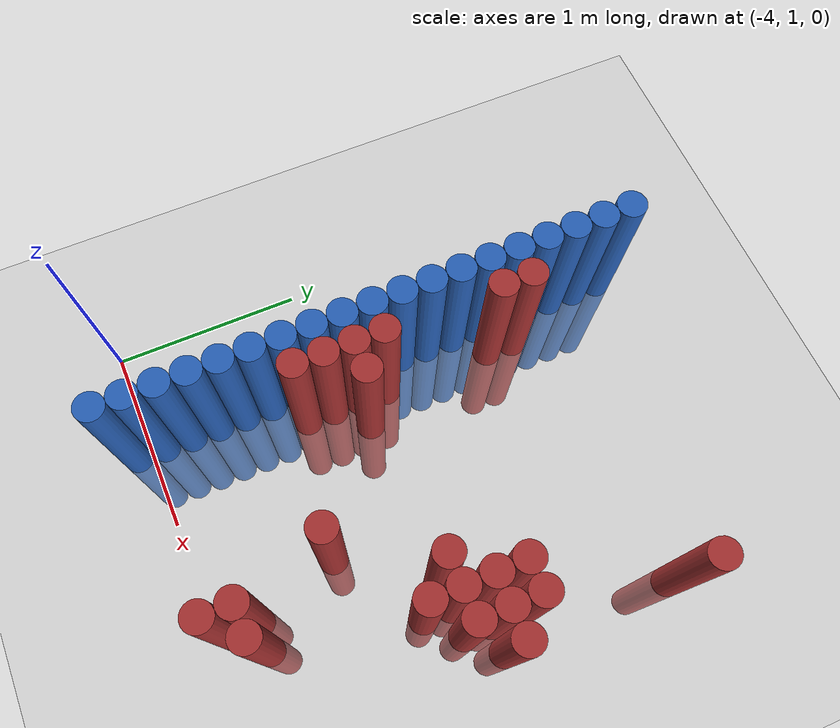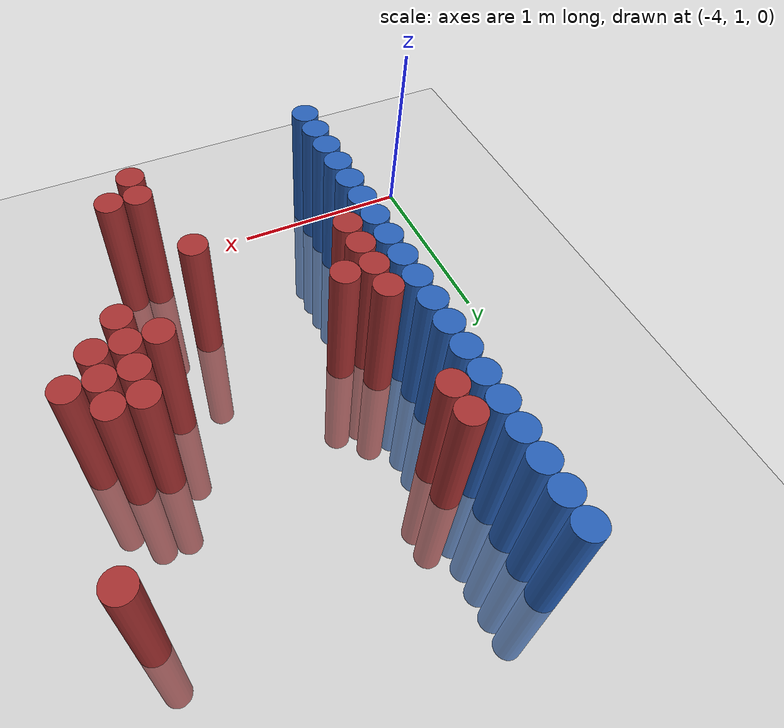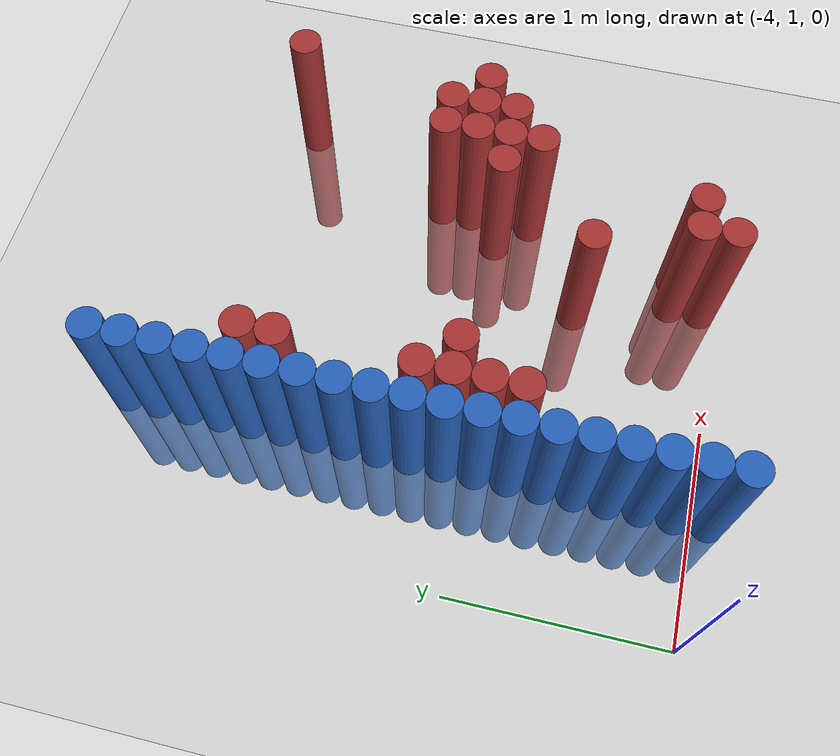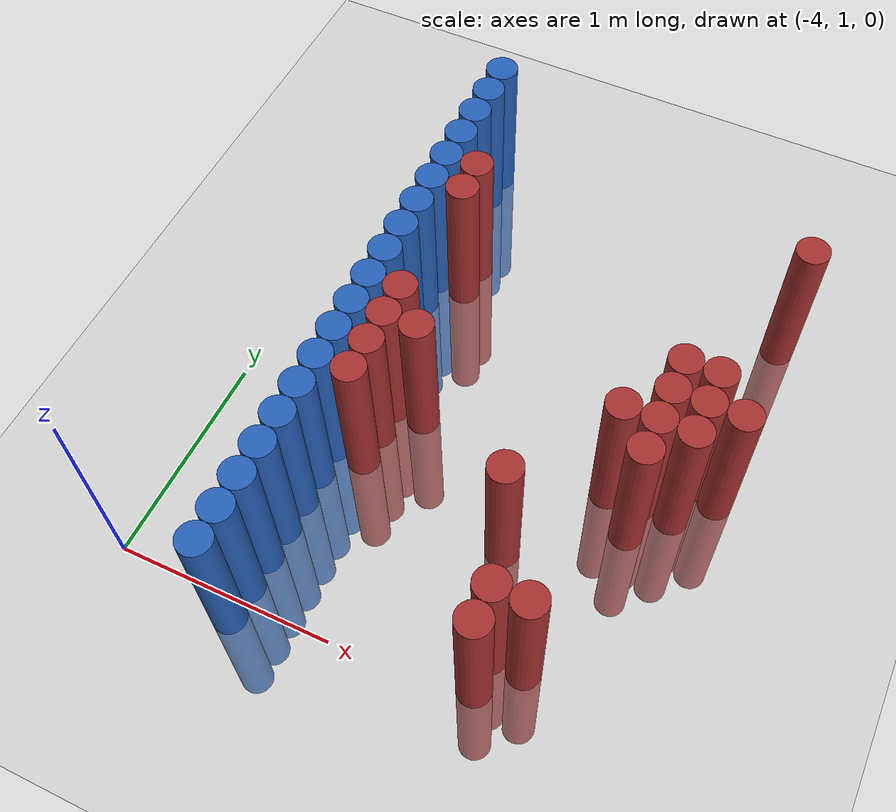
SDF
<sdf version="1.7">
 <world name="default">
  <model name="ground_plane">
   <static>1</static>
   <link name="link">
    <collision name="collision">
     <geometry><plane><normal>0 0 1</normal><size>100 100</size></plane></geometry>
     <surface><friction><ode><mu>100</mu><mu2>50</mu2></ode></friction></surface>
    </collision>
    <visual name="visual">
     <cast_shadows>0</cast_shadows>
     <geometry><plane><normal>0 0 1</normal><size>100 100</size></plane></geometry>
     <material>
      <script><uri>file://media/materials/scripts/gazebo.material</uri><name>Gazebo/Grey</name></script>
     </material>
    </visual>
   </link>
  </model>
  <model name="unit_cylinder_129">
   <static>1</static>
   <pose>-3.425 1.075 0 0 -0 0</pose>
   <link name="link">
    <inertial>
     <mass>1</mass>
     <inertia><ixx>0.145833</ixx><ixy>0</ixy><ixz>0</ixz><iyy>0.145833</iyy><iyz>0</iyz><izz>0.125</izz></inertia>
    </inertial>
    <collision name="collision">
     <geometry><cylinder><radius>0.075</radius><length>1.5</length></cylinder></geometry>
    </collision>
    <visual name="visual">
     <geometry><cylinder><radius>0.075</radius><length>1.5</length></cylinder></geometry>
     <material><ambient>0.152 0.379 0.72 1</ambient><diffuse>0.152 0.379 0.72 1</diffuse></material>
     <material>
      <script><name>Gazebo/Grey</name><uri>file://media/materials/scripts/gazebo.material</uri></script>
     </material>
    </visual>
   </link>
  </model>
  <model name="unit_cylinder_131">
   <static>1</static>
   <pose>-3.425 1.225 0 0 -0 0</pose>
   <link name="link">
    <inertial>
     <mass>1</mass>
     <inertia><ixx>0.145833</ixx><ixy>0</ixy><ixz>0</ixz><iyy>0.145833</iyy><iyz>0</iyz><izz>0.125</izz></inertia>
    </inertial>
    <collision name="collision">
     <geometry><cylinder><radius>0.075</radius><length>1.5</length></cylinder></geometry>
    </collision>
    <visual name="visual">
     <geometry><cylinder><radius>0.075</radius><length>1.5</length></cylinder></geometry>
     <material><ambient>0.152 0.379 0.72 1</ambient><diffuse>0.152 0.379 0.72 1</diffuse></material>
     <material>
      <script><name>Gazebo/Grey</name><uri>file://media/materials/scripts/gazebo.material</uri></script>
     </material>
    </visual>
   </link>
  </model>
  <model name="unit_cylinder_133">
   <static>1</static>
   <pose>-3.425 1.375 0 0 -0 0</pose>
   <link name="link">
    <inertial>
     <mass>1</mass>
     <inertia><ixx>0.145833</ixx><ixy>0</ixy><ixz>0</ixz><iyy>0.145833</iyy><iyz>0</iyz><izz>0.125</izz></inertia>
    </inertial>
    <collision name="collision">
     <geometry><cylinder><radius>0.075</radius><length>1.5</length></cylinder></geometry>
    </collision>
    <visual name="visual">
     <geometry><cylinder><radius>0.075</radius><length>1.5</length></cylinder></geometry>
     <material><ambient>0.152 0.379 0.72 1</ambient><diffuse>0.152 0.379 0.72 1</diffuse></material>
     <material>
      <script><name>Gazebo/Grey</name><uri>file://media/materials/scripts/gazebo.material</uri></script>
     </material>
    </visual>
   </link>
  </model>
  <model name="unit_cylinder_135">
   <static>1</static>
   <pose>-3.425 1.525 0 0 -0 0</pose>
   <link name="link">
    <inertial>
     <mass>1</mass>
     <inertia><ixx>0.145833</ixx><ixy>0</ixy><ixz>0</ixz><iyy>0.145833</iyy><iyz>0</iyz><izz>0.125</izz></inertia>
    </inertial>
    <collision name="collision">
     <geometry><cylinder><radius>0.075</radius><length>1.5</length></cylinder></geometry>
    </collision>
    <visual name="visual">
     <geometry><cylinder><radius>0.075</radius><length>1.5</length></cylinder></geometry>
     <material><ambient>0.152 0.379 0.72 1</ambient><diffuse>0.152 0.379 0.72 1</diffuse></material>
     <material>
      <script><name>Gazebo/Grey</name><uri>file://media/materials/scripts/gazebo.material</uri></script>
     </material>
    </visual>
   </link>
  </model>
  <model name="unit_cylinder_137">
   <static>1</static>
   <pose>-3.425 1.675 0 0 -0 0</pose>
   <link name="link">
    <inertial>
     <mass>1</mass>
     <inertia><ixx>0.145833</ixx><ixy>0</ixy><ixz>0</ixz><iyy>0.145833</iyy><iyz>0</iyz><izz>0.125</izz></inertia>
    </inertial>
    <collision name="collision">
     <geometry><cylinder><radius>0.075</radius><length>1.5</length></cylinder></geometry>
    </collision>
    <visual name="visual">
     <geometry><cylinder><radius>0.075</radius><length>1.5</length></cylinder></geometry>
     <material><ambient>0.152 0.379 0.72 1</ambient><diffuse>0.152 0.379 0.72 1</diffuse></material>
     <material>
      <script><name>Gazebo/Grey</name><uri>file://media/materials/scripts/gazebo.material</uri></script>
     </material>
    </visual>
   </link>
  </model>
  <model name="unit_cylinder_139">
   <static>1</static>
   <pose>-3.425 1.825 0 0 -0 0</pose>
   <link name="link">
    <inertial>
     <mass>1</mass>
     <inertia><ixx>0.145833</ixx><ixy>0</ixy><ixz>0</ixz><iyy>0.145833</iyy><iyz>0</iyz><izz>0.125</izz></inertia>
    </inertial>
    <collision name="collision">
     <geometry><cylinder><radius>0.075</radius><length>1.5</length></cylinder></geometry>
    </collision>
    <visual name="visual">
     <geometry><cylinder><radius>0.075</radius><length>1.5</length></cylinder></geometry>
     <material><ambient>0.152 0.379 0.72 1</ambient><diffuse>0.152 0.379 0.72 1</diffuse></material>
     <material>
      <script><name>Gazebo/Grey</name><uri>file://media/materials/scripts/gazebo.material</uri></script>
     </material>
    </visual>
   </link>
  </model>
  <model name="unit_cylinder_141">
   <static>1</static>
   <pose>-3.425 1.975 0 0 -0 0</pose>
   <link name="link">
    <inertial>
     <mass>1</mass>
     <inertia><ixx>0.145833</ixx><ixy>0</ixy><ixz>0</ixz><iyy>0.145833</iyy><iyz>0</iyz><izz>0.125</izz></inertia>
    </inertial>
    <collision name="collision">
     <geometry><cylinder><radius>0.075</radius><length>1.5</length></cylinder></geometry>
    </collision>
    <visual name="visual">
     <geometry><cylinder><radius>0.075</radius><length>1.5</length></cylinder></geometry>
     <material><ambient>0.152 0.379 0.72 1</ambient><diffuse>0.152 0.379 0.72 1</diffuse></material>
     <material>
      <script><name>Gazebo/Grey</name><uri>file://media/materials/scripts/gazebo.material</uri></script>
     </material>
    </visual>
   </link>
  </model>
  <model name="unit_cylinder_143">
   <static>1</static>
   <pose>-3.425 2.125 0 0 -0 0</pose>
   <link name="link">
    <inertial>
     <mass>1</mass>
     <inertia><ixx>0.145833</ixx><ixy>0</ixy><ixz>0</ixz><iyy>0.145833</iyy><iyz>0</iyz><izz>0.125</izz></inertia>
    </inertial>
    <collision name="collision">
     <geometry><cylinder><radius>0.075</radius><length>1.5</length></cylinder></geometry>
    </collision>
    <visual name="visual">
     <geometry><cylinder><radius>0.075</radius><length>1.5</length></cylinder></geometry>
     <material><ambient>0.152 0.379 0.72 1</ambient><diffuse>0.152 0.379 0.72 1</diffuse></material>
     <material>
      <script><name>Gazebo/Grey</name><uri>file://media/materials/scripts/gazebo.material</uri></script>
     </material>
    </visual>
   </link>
  </model>
  <model name="unit_cylinder_145">
   <static>1</static>
   <pose>-3.425 2.275 0 0 -0 0</pose>
   <link name="link">
    <inertial>
     <mass>1</mass>
     <inertia><ixx>0.145833</ixx><ixy>0</ixy><ixz>0</ixz><iyy>0.145833</iyy><iyz>0</iyz><izz>0.125</izz></inertia>
    </inertial>
    <collision name="collision">
     <geometry><cylinder><radius>0.075</radius><length>1.5</length></cylinder></geometry>
    </collision>
    <visual name="visual">
     <geometry><cylinder><radius>0.075</radius><length>1.5</length></cylinder></geometry>
     <material><ambient>0.152 0.379 0.72 1</ambient><diffuse>0.152 0.379 0.72 1</diffuse></material>
     <material>
      <script><name>Gazebo/Grey</name><uri>file://media/materials/scripts/gazebo.material</uri></script>
     </material>
    </visual>
   </link>
  </model>
  <model name="unit_cylinder_147">
   <static>1</static>
   <pose>-3.425 2.425 0 0 -0 0</pose>
   <link name="link">
    <inertial>
     <mass>1</mass>
     <inertia><ixx>0.145833</ixx><ixy>0</ixy><ixz>0</ixz><iyy>0.145833</iyy><iyz>0</iyz><izz>0.125</izz></inertia>
    </inertial>
    <collision name="collision">
     <geometry><cylinder><radius>0.075</radius><length>1.5</length></cylinder></geometry>
    </collision>
    <visual name="visual">
     <geometry><cylinder><radius>0.075</radius><length>1.5</length></cylinder></geometry>
     <material><ambient>0.152 0.379 0.72 1</ambient><diffuse>0.152 0.379 0.72 1</diffuse></material>
     <material>
      <script><name>Gazebo/Grey</name><uri>file://media/materials/scripts/gazebo.material</uri></script>
     </material>
    </visual>
   </link>
  </model>
  <model name="unit_cylinder_149">
   <static>1</static>
   <pose>-3.425 2.575 0 0 -0 0</pose>
   <link name="link">
    <inertial>
     <mass>1</mass>
     <inertia><ixx>0.145833</ixx><ixy>0</ixy><ixz>0</ixz><iyy>0.145833</iyy><iyz>0</iyz><izz>0.125</izz></inertia>
    </inertial>
    <collision name="collision">
     <geometry><cylinder><radius>0.075</radius><length>1.5</length></cylinder></geometry>
    </collision>
    <visual name="visual">
     <geometry><cylinder><radius>0.075</radius><length>1.5</length></cylinder></geometry>
     <material><ambient>0.152 0.379 0.72 1</ambient><diffuse>0.152 0.379 0.72 1</diffuse></material>
     <material>
      <script><name>Gazebo/Grey</name><uri>file://media/materials/scripts/gazebo.material</uri></script>
     </material>
    </visual>
   </link>
  </model>
  <model name="unit_cylinder_151">
   <static>1</static>
   <pose>-3.425 2.725 0 0 -0 0</pose>
   <link name="link">
    <inertial>
     <mass>1</mass>
     <inertia><ixx>0.145833</ixx><ixy>0</ixy><ixz>0</ixz><iyy>0.145833</iyy><iyz>0</iyz><izz>0.125</izz></inertia>
    </inertial>
    <collision name="collision">
     <geometry><cylinder><radius>0.075</radius><length>1.5</length></cylinder></geometry>
    </collision>
    <visual name="visual">
     <geometry><cylinder><radius>0.075</radius><length>1.5</length></cylinder></geometry>
     <material><ambient>0.152 0.379 0.72 1</ambient><diffuse>0.152 0.379 0.72 1</diffuse></material>
     <material>
      <script><name>Gazebo/Grey</name><uri>file://media/materials/scripts/gazebo.material</uri></script>
     </material>
    </visual>
   </link>
  </model>
  <model name="unit_cylinder_153">
   <static>1</static>
   <pose>-3.425 2.875 0 0 -0 0</pose>
   <link name="link">
    <inertial>
     <mass>1</mass>
     <inertia><ixx>0.145833</ixx><ixy>0</ixy><ixz>0</ixz><iyy>0.145833</iyy><iyz>0</iyz><izz>0.125</izz></inertia>
    </inertial>
    <collision name="collision">
     <geometry><cylinder><radius>0.075</radius><length>1.5</length></cylinder></geometry>
    </collision>
    <visual name="visual">
     <geometry><cylinder><radius>0.075</radius><length>1.5</length></cylinder></geometry>
     <material><ambient>0.152 0.379 0.72 1</ambient><diffuse>0.152 0.379 0.72 1</diffuse></material>
     <material>
      <script><name>Gazebo/Grey</name><uri>file://media/materials/scripts/gazebo.material</uri></script>
     </material>
    </visual>
   </link>
  </model>
  <model name="unit_cylinder_155">
   <static>1</static>
   <pose>-3.425 3.025 0 0 -0 0</pose>
   <link name="link">
    <inertial>
     <mass>1</mass>
     <inertia><ixx>0.145833</ixx><ixy>0</ixy><ixz>0</ixz><iyy>0.145833</iyy><iyz>0</iyz><izz>0.125</izz></inertia>
    </inertial>
    <collision name="collision">
     <geometry><cylinder><radius>0.075</radius><length>1.5</length></cylinder></geometry>
    </collision>
    <visual name="visual">
     <geometry><cylinder><radius>0.075</radius><length>1.5</length></cylinder></geometry>
     <material><ambient>0.152 0.379 0.72 1</ambient><diffuse>0.152 0.379 0.72 1</diffuse></material>
     <material>
      <script><name>Gazebo/Grey</name><uri>file://media/materials/scripts/gazebo.material</uri></script>
     </material>
    </visual>
   </link>
  </model>
  <model name="unit_cylinder_157">
   <static>1</static>
   <pose>-3.425 3.175 0 0 -0 0</pose>
   <link name="link">
    <inertial>
     <mass>1</mass>
     <inertia><ixx>0.145833</ixx><ixy>0</ixy><ixz>0</ixz><iyy>0.145833</iyy><iyz>0</iyz><izz>0.125</izz></inertia>
    </inertial>
    <collision name="collision">
     <geometry><cylinder><radius>0.075</radius><length>1.5</length></cylinder></geometry>
    </collision>
    <visual name="visual">
     <geometry><cylinder><radius>0.075</radius><length>1.5</length></cylinder></geometry>
     <material><ambient>0.152 0.379 0.72 1</ambient><diffuse>0.152 0.379 0.72 1</diffuse></material>
     <material>
      <script><name>Gazebo/Grey</name><uri>file://media/materials/scripts/gazebo.material</uri></script>
     </material>
    </visual>
   </link>
  </model>
  <model name="unit_cylinder_159">
   <static>1</static>
   <pose>-3.425 3.325 0 0 -0 0</pose>
   <link name="link">
    <inertial>
     <mass>1</mass>
     <inertia><ixx>0.145833</ixx><ixy>0</ixy><ixz>0</ixz><iyy>0.145833</iyy><iyz>0</iyz><izz>0.125</izz></inertia>
    </inertial>
    <collision name="collision">
     <geometry><cylinder><radius>0.075</radius><length>1.5</length></cylinder></geometry>
    </collision>
    <visual name="visual">
     <geometry><cylinder><radius>0.075</radius><length>1.5</length></cylinder></geometry>
     <material><ambient>0.152 0.379 0.72 1</ambient><diffuse>0.152 0.379 0.72 1</diffuse></material>
     <material>
      <script><name>Gazebo/Grey</name><uri>file://media/materials/scripts/gazebo.material</uri></script>
     </material>
    </visual>
   </link>
  </model>
  <model name="unit_cylinder_161">
   <static>1</static>
   <pose>-3.425 3.475 0 0 -0 0</pose>
   <link name="link">
    <inertial>
     <mass>1</mass>
     <inertia><ixx>0.145833</ixx><ixy>0</ixy><ixz>0</ixz><iyy>0.145833</iyy><iyz>0</iyz><izz>0.125</izz></inertia>
    </inertial>
    <collision name="collision">
     <geometry><cylinder><radius>0.075</radius><length>1.5</length></cylinder></geometry>
    </collision>
    <visual name="visual">
     <geometry><cylinder><radius>0.075</radius><length>1.5</length></cylinder></geometry>
     <material><ambient>0.152 0.379 0.72 1</ambient><diffuse>0.152 0.379 0.72 1</diffuse></material>
     <material>
      <script><name>Gazebo/Grey</name><uri>file://media/materials/scripts/gazebo.material</uri></script>
     </material>
    </visual>
   </link>
  </model>
  <model name="unit_cylinder_163">
   <static>1</static>
   <pose>-3.425 3.625 0 0 -0 0</pose>
   <link name="link">
    <inertial>
     <mass>1</mass>
     <inertia><ixx>0.145833</ixx><ixy>0</ixy><ixz>0</ixz><iyy>0.145833</iyy><iyz>0</iyz><izz>0.125</izz></inertia>
    </inertial>
    <collision name="collision">
     <geometry><cylinder><radius>0.075</radius><length>1.5</length></cylinder></geometry>
    </collision>
    <visual name="visual">
     <geometry><cylinder><radius>0.075</radius><length>1.5</length></cylinder></geometry>
     <material><ambient>0.152 0.379 0.72 1</ambient><diffuse>0.152 0.379 0.72 1</diffuse></material>
     <material>
      <script><name>Gazebo/Grey</name><uri>file://media/materials/scripts/gazebo.material</uri></script>
     </material>
    </visual>
   </link>
  </model>
  <model name="unit_cylinder_227">
   <static>1</static>
   <pose>-3.425 0.925 0 0 -0 0</pose>
   <link name="link">
    <inertial>
     <mass>1</mass>
     <inertia><ixx>0.145833</ixx><ixy>0</ixy><ixz>0</ixz><iyy>0.145833</iyy><iyz>0</iyz><izz>0.125</izz></inertia>
    </inertial>
    <collision name="collision">
     <geometry><cylinder><radius>0.075</radius><length>1.5</length></cylinder></geometry>
    </collision>
    <visual name="visual">
     <geometry><cylinder><radius>0.075</radius><length>1.5</length></cylinder></geometry>
     <material><ambient>0.152 0.379 0.72 1</ambient><diffuse>0.152 0.379 0.72 1</diffuse></material>
     <material>
      <script><name>Gazebo/Grey</name><uri>file://media/materials/scripts/gazebo.material</uri></script>
     </material>
    </visual>
   </link>
  </model>
  <model name="unit_cylinder_228">
   <static>1</static>
   <pose>-3.425 1.075 0 0 -0 0</pose>
   <link name="link">
    <inertial>
     <mass>1</mass>
     <inertia><ixx>0.145833</ixx><ixy>0</ixy><ixz>0</ixz><iyy>0.145833</iyy><iyz>0</iyz><izz>0.125</izz></inertia>
    </inertial>
    <collision name="collision">
     <geometry><cylinder><radius>0.075</radius><length>1.5</length></cylinder></geometry>
    </collision>
    <visual name="visual">
     <geometry><cylinder><radius>0.075</radius><length>1.5</length></cylinder></geometry>
     <material><ambient>0.152 0.379 0.72 1</ambient><diffuse>0.152 0.379 0.72 1</diffuse></material>
     <material>
      <script><name>Gazebo/Grey</name><uri>file://media/materials/scripts/gazebo.material</uri></script>
     </material>
    </visual>
   </link>
  </model>
  <model name="unit_cylinder_229">
   <static>1</static>
   <pose>-3.425 1.225 0 0 -0 0</pose>
   <link name="link">
    <inertial>
     <mass>1</mass>
     <inertia><ixx>0.145833</ixx><ixy>0</ixy><ixz>0</ixz><iyy>0.145833</iyy><iyz>0</iyz><izz>0.125</izz></inertia>
    </inertial>
    <collision name="collision">
     <geometry><cylinder><radius>0.075</radius><length>1.5</length></cylinder></geometry>
    </collision>
    <visual name="visual">
     <geometry><cylinder><radius>0.075</radius><length>1.5</length></cylinder></geometry>
     <material><ambient>0.152 0.379 0.72 1</ambient><diffuse>0.152 0.379 0.72 1</diffuse></material>
     <material>
      <script><name>Gazebo/Grey</name><uri>file://media/materials/scripts/gazebo.material</uri></script>
     </material>
    </visual>
   </link>
  </model>
  <model name="unit_cylinder_230">
   <static>1</static>
   <pose>-3.425 1.375 0 0 -0 0</pose>
   <link name="link">
    <inertial>
     <mass>1</mass>
     <inertia><ixx>0.145833</ixx><ixy>0</ixy><ixz>0</ixz><iyy>0.145833</iyy><iyz>0</iyz><izz>0.125</izz></inertia>
    </inertial>
    <collision name="collision">
     <geometry><cylinder><radius>0.075</radius><length>1.5</length></cylinder></geometry>
    </collision>
    <visual name="visual">
     <geometry><cylinder><radius>0.075</radius><length>1.5</length></cylinder></geometry>
     <material><ambient>0.152 0.379 0.72 1</ambient><diffuse>0.152 0.379 0.72 1</diffuse></material>
     <material>
      <script><name>Gazebo/Grey</name><uri>file://media/materials/scripts/gazebo.material</uri></script>
     </material>
    </visual>
   </link>
  </model>
  <model name="unit_cylinder_231">
   <static>1</static>
   <pose>-3.425 1.525 0 0 -0 0</pose>
   <link name="link">
    <inertial>
     <mass>1</mass>
     <inertia><ixx>0.145833</ixx><ixy>0</ixy><ixz>0</ixz><iyy>0.145833</iyy><iyz>0</iyz><izz>0.125</izz></inertia>
    </inertial>
    <collision name="collision">
     <geometry><cylinder><radius>0.075</radius><length>1.5</length></cylinder></geometry>
    </collision>
    <visual name="visual">
     <geometry><cylinder><radius>0.075</radius><length>1.5</length></cylinder></geometry>
     <material><ambient>0.152 0.379 0.72 1</ambient><diffuse>0.152 0.379 0.72 1</diffuse></material>
     <material>
      <script><name>Gazebo/Grey</name><uri>file://media/materials/scripts/gazebo.material</uri></script>
     </material>
    </visual>
   </link>
  </model>
  <model name="unit_cylinder_232">
   <static>1</static>
   <pose>-3.425 1.675 0 0 -0 0</pose>
   <link name="link">
    <inertial>
     <mass>1</mass>
     <inertia><ixx>0.145833</ixx><ixy>0</ixy><ixz>0</ixz><iyy>0.145833</iyy><iyz>0</iyz><izz>0.125</izz></inertia>
    </inertial>
    <collision name="collision">
     <geometry><cylinder><radius>0.075</radius><length>1.5</length></cylinder></geometry>
    </collision>
    <visual name="visual">
     <geometry><cylinder><radius>0.075</radius><length>1.5</length></cylinder></geometry>
     <material><ambient>0.152 0.379 0.72 1</ambient><diffuse>0.152 0.379 0.72 1</diffuse></material>
     <material>
      <script><name>Gazebo/Grey</name><uri>file://media/materials/scripts/gazebo.material</uri></script>
     </material>
    </visual>
   </link>
  </model>
  <model name="unit_cylinder_233">
   <static>1</static>
   <pose>-3.425 1.825 0 0 -0 0</pose>
   <link name="link">
    <inertial>
     <mass>1</mass>
     <inertia><ixx>0.145833</ixx><ixy>0</ixy><ixz>0</ixz><iyy>0.145833</iyy><iyz>0</iyz><izz>0.125</izz></inertia>
    </inertial>
    <collision name="collision">
     <geometry><cylinder><radius>0.075</radius><length>1.5</length></cylinder></geometry>
    </collision>
    <visual name="visual">
     <geometry><cylinder><radius>0.075</radius><length>1.5</length></cylinder></geometry>
     <material><ambient>0.152 0.379 0.72 1</ambient><diffuse>0.152 0.379 0.72 1</diffuse></material>
     <material>
      <script><name>Gazebo/Grey</name><uri>file://media/materials/scripts/gazebo.material</uri></script>
     </material>
    </visual>
   </link>
  </model>
  <model name="unit_cylinder_234">
   <static>1</static>
   <pose>-3.425 1.975 0 0 -0 0</pose>
   <link name="link">
    <inertial>
     <mass>1</mass>
     <inertia><ixx>0.145833</ixx><ixy>0</ixy><ixz>0</ixz><iyy>0.145833</iyy><iyz>0</iyz><izz>0.125</izz></inertia>
    </inertial>
    <collision name="collision">
     <geometry><cylinder><radius>0.075</radius><length>1.5</length></cylinder></geometry>
    </collision>
    <visual name="visual">
     <geometry><cylinder><radius>0.075</radius><length>1.5</length></cylinder></geometry>
     <material><ambient>0.152 0.379 0.72 1</ambient><diffuse>0.152 0.379 0.72 1</diffuse></material>
     <material>
      <script><name>Gazebo/Grey</name><uri>file://media/materials/scripts/gazebo.material</uri></script>
     </material>
    </visual>
   </link>
  </model>
  <model name="unit_cylinder_235">
   <static>1</static>
   <pose>-3.425 2.125 0 0 -0 0</pose>
   <link name="link">
    <inertial>
     <mass>1</mass>
     <inertia><ixx>0.145833</ixx><ixy>0</ixy><ixz>0</ixz><iyy>0.145833</iyy><iyz>0</iyz><izz>0.125</izz></inertia>
    </inertial>
    <collision name="collision">
     <geometry><cylinder><radius>0.075</radius><length>1.5</length></cylinder></geometry>
    </collision>
    <visual name="visual">
     <geometry><cylinder><radius>0.075</radius><length>1.5</length></cylinder></geometry>
     <material><ambient>0.152 0.379 0.72 1</ambient><diffuse>0.152 0.379 0.72 1</diffuse></material>
     <material>
      <script><name>Gazebo/Grey</name><uri>file://media/materials/scripts/gazebo.material</uri></script>
     </material>
    </visual>
   </link>
  </model>
  <model name="unit_cylinder_236">
   <static>1</static>
   <pose>-3.425 2.275 0 0 -0 0</pose>
   <link name="link">
    <inertial>
     <mass>1</mass>
     <inertia><ixx>0.145833</ixx><ixy>0</ixy><ixz>0</ixz><iyy>0.145833</iyy><iyz>0</iyz><izz>0.125</izz></inertia>
    </inertial>
    <collision name="collision">
     <geometry><cylinder><radius>0.075</radius><length>1.5</length></cylinder></geometry>
    </collision>
    <visual name="visual">
     <geometry><cylinder><radius>0.075</radius><length>1.5</length></cylinder></geometry>
     <material><ambient>0.152 0.379 0.72 1</ambient><diffuse>0.152 0.379 0.72 1</diffuse></material>
     <material>
      <script><name>Gazebo/Grey</name><uri>file://media/materials/scripts/gazebo.material</uri></script>
     </material>
    </visual>
   </link>
  </model>
  <model name="unit_cylinder_237">
   <static>1</static>
   <pose>-3.425 2.425 0 0 -0 0</pose>
   <link name="link">
    <inertial>
     <mass>1</mass>
     <inertia><ixx>0.145833</ixx><ixy>0</ixy><ixz>0</ixz><iyy>0.145833</iyy><iyz>0</iyz><izz>0.125</izz></inertia>
    </inertial>
    <collision name="collision">
     <geometry><cylinder><radius>0.075</radius><length>1.5</length></cylinder></geometry>
    </collision>
    <visual name="visual">
     <geometry><cylinder><radius>0.075</radius><length>1.5</length></cylinder></geometry>
     <material><ambient>0.152 0.379 0.72 1</ambient><diffuse>0.152 0.379 0.72 1</diffuse></material>
     <material>
      <script><name>Gazebo/Grey</name><uri>file://media/materials/scripts/gazebo.material</uri></script>
     </material>
    </visual>
   </link>
  </model>
  <model name="unit_cylinder_238">
   <static>1</static>
   <pose>-3.425 2.575 0 0 -0 0</pose>
   <link name="link">
    <inertial>
     <mass>1</mass>
     <inertia><ixx>0.145833</ixx><ixy>0</ixy><ixz>0</ixz><iyy>0.145833</iyy><iyz>0</iyz><izz>0.125</izz></inertia>
    </inertial>
    <collision name="collision">
     <geometry><cylinder><radius>0.075</radius><length>1.5</length></cylinder></geometry>
    </collision>
    <visual name="visual">
     <geometry><cylinder><radius>0.075</radius><length>1.5</length></cylinder></geometry>
     <material><ambient>0.152 0.379 0.72 1</ambient><diffuse>0.152 0.379 0.72 1</diffuse></material>
     <material>
      <script><name>Gazebo/Grey</name><uri>file://media/materials/scripts/gazebo.material</uri></script>
     </material>
    </visual>
   </link>
  </model>
  <model name="unit_cylinder_239">
   <static>1</static>
   <pose>-3.425 2.725 0 0 -0 0</pose>
   <link name="link">
    <inertial>
     <mass>1</mass>
     <inertia><ixx>0.145833</ixx><ixy>0</ixy><ixz>0</ixz><iyy>0.145833</iyy><iyz>0</iyz><izz>0.125</izz></inertia>
    </inertial>
    <collision name="collision">
     <geometry><cylinder><radius>0.075</radius><length>1.5</length></cylinder></geometry>
    </collision>
    <visual name="visual">
     <geometry><cylinder><radius>0.075</radius><length>1.5</length></cylinder></geometry>
     <material><ambient>0.152 0.379 0.72 1</ambient><diffuse>0.152 0.379 0.72 1</diffuse></material>
     <material>
      <script><name>Gazebo/Grey</name><uri>file://media/materials/scripts/gazebo.material</uri></script>
     </material>
    </visual>
   </link>
  </model>
  <model name="unit_cylinder_240">
   <static>1</static>
   <pose>-3.425 2.875 0 0 -0 0</pose>
   <link name="link">
    <inertial>
     <mass>1</mass>
     <inertia><ixx>0.145833</ixx><ixy>0</ixy><ixz>0</ixz><iyy>0.145833</iyy><iyz>0</iyz><izz>0.125</izz></inertia>
    </inertial>
    <collision name="collision">
     <geometry><cylinder><radius>0.075</radius><length>1.5</length></cylinder></geometry>
    </collision>
    <visual name="visual">
     <geometry><cylinder><radius>0.075</radius><length>1.5</length></cylinder></geometry>
     <material><ambient>0.152 0.379 0.72 1</ambient><diffuse>0.152 0.379 0.72 1</diffuse></material>
     <material>
      <script><name>Gazebo/Grey</name><uri>file://media/materials/scripts/gazebo.material</uri></script>
     </material>
    </visual>
   </link>
  </model>
  <model name="unit_cylinder_241">
   <static>1</static>
   <pose>-3.425 3.025 0 0 -0 0</pose>
   <link name="link">
    <inertial>
     <mass>1</mass>
     <inertia><ixx>0.145833</ixx><ixy>0</ixy><ixz>0</ixz><iyy>0.145833</iyy><iyz>0</iyz><izz>0.125</izz></inertia>
    </inertial>
    <collision name="collision">
     <geometry><cylinder><radius>0.075</radius><length>1.5</length></cylinder></geometry>
    </collision>
    <visual name="visual">
     <geometry><cylinder><radius>0.075</radius><length>1.5</length></cylinder></geometry>
     <material><ambient>0.152 0.379 0.72 1</ambient><diffuse>0.152 0.379 0.72 1</diffuse></material>
     <material>
      <script><name>Gazebo/Grey</name><uri>file://media/materials/scripts/gazebo.material</uri></script>
     </material>
    </visual>
   </link>
  </model>
  <model name="unit_cylinder_242">
   <static>1</static>
   <pose>-3.425 3.175 0 0 -0 0</pose>
   <link name="link">
    <inertial>
     <mass>1</mass>
     <inertia><ixx>0.145833</ixx><ixy>0</ixy><ixz>0</ixz><iyy>0.145833</iyy><iyz>0</iyz><izz>0.125</izz></inertia>
    </inertial>
    <collision name="collision">
     <geometry><cylinder><radius>0.075</radius><length>1.5</length></cylinder></geometry>
    </collision>
    <visual name="visual">
     <geometry><cylinder><radius>0.075</radius><length>1.5</length></cylinder></geometry>
     <material><ambient>0.152 0.379 0.72 1</ambient><diffuse>0.152 0.379 0.72 1</diffuse></material>
     <material>
      <script><name>Gazebo/Grey</name><uri>file://media/materials/scripts/gazebo.material</uri></script>
     </material>
    </visual>
   </link>
  </model>
  <model name="unit_cylinder_243">
   <static>1</static>
   <pose>-3.425 3.325 0 0 -0 0</pose>
   <link name="link">
    <inertial>
     <mass>1</mass>
     <inertia><ixx>0.145833</ixx><ixy>0</ixy><ixz>0</ixz><iyy>0.145833</iyy><iyz>0</iyz><izz>0.125</izz></inertia>
    </inertial>
    <collision name="collision">
     <geometry><cylinder><radius>0.075</radius><length>1.5</length></cylinder></geometry>
    </collision>
    <visual name="visual">
     <geometry><cylinder><radius>0.075</radius><length>1.5</length></cylinder></geometry>
     <material><ambient>0.152 0.379 0.72 1</ambient><diffuse>0.152 0.379 0.72 1</diffuse></material>
     <material>
      <script><name>Gazebo/Grey</name><uri>file://media/materials/scripts/gazebo.material</uri></script>
     </material>
    </visual>
   </link>
  </model>
  <model name="unit_cylinder_244">
   <static>1</static>
   <pose>-3.425 3.475 0 0 -0 0</pose>
   <link name="link">
    <inertial>
     <mass>1</mass>
     <inertia><ixx>0.145833</ixx><ixy>0</ixy><ixz>0</ixz><iyy>0.145833</iyy><iyz>0</iyz><izz>0.125</izz></inertia>
    </inertial>
    <collision name="collision">
     <geometry><cylinder><radius>0.075</radius><length>1.5</length></cylinder></geometry>
    </collision>
    <visual name="visual">
     <geometry><cylinder><radius>0.075</radius><length>1.5</length></cylinder></geometry>
     <material><ambient>0.152 0.379 0.72 1</ambient><diffuse>0.152 0.379 0.72 1</diffuse></material>
     <material>
      <script><name>Gazebo/Grey</name><uri>file://media/materials/scripts/gazebo.material</uri></script>
     </material>
    </visual>
   </link>
  </model>
  <model name="unit_cylinder_245">
   <static>1</static>
   <pose>-3.425 3.625 0 0 -0 0</pose>
   <link name="link">
    <inertial>
     <mass>1</mass>
     <inertia><ixx>0.145833</ixx><ixy>0</ixy><ixz>0</ixz><iyy>0.145833</iyy><iyz>0</iyz><izz>0.125</izz></inertia>
    </inertial>
    <collision name="collision">
     <geometry><cylinder><radius>0.075</radius><length>1.5</length></cylinder></geometry>
    </collision>
    <visual name="visual">
     <geometry><cylinder><radius>0.075</radius><length>1.5</length></cylinder></geometry>
     <material><ambient>0.152 0.379 0.72 1</ambient><diffuse>0.152 0.379 0.72 1</diffuse></material>
     <material>
      <script><name>Gazebo/Grey</name><uri>file://media/materials/scripts/gazebo.material</uri></script>
     </material>
    </visual>
   </link>
  </model>
  <model name="unit_cylinder_264">
   <static>1</static>
   <pose>-3.275 1.825 0 0 -0 0</pose>
   <link name="link">
    <inertial>
     <mass>1</mass>
     <inertia><ixx>0.145833</ixx><ixy>0</ixy><ixz>0</ixz><iyy>0.145833</iyy><iyz>0</iyz><izz>0.125</izz></inertia>
    </inertial>
    <collision name="collision">
     <geometry><cylinder><radius>0.075</radius><length>1.5</length></cylinder></geometry>
    </collision>
    <visual name="visual">
     <geometry><cylinder><radius>0.075</radius><length>1.5</length></cylinder></geometry>
     <material><ambient>0.648 0.192 0.192 1</ambient><diffuse>0.648 0.192 0.192 1</diffuse></material>
     <material>
      <script><name>Gazebo/Grey</name><uri>file://media/materials/scripts/gazebo.material</uri></script>
     </material>
    </visual>
   </link>
  </model>
  <model name="unit_cylinder_265">
   <static>1</static>
   <pose>-3.275 1.975 0 0 -0 0</pose>
   <link name="link">
    <inertial>
     <mass>1</mass>
     <inertia><ixx>0.145833</ixx><ixy>0</ixy><ixz>0</ixz><iyy>0.145833</iyy><iyz>0</iyz><izz>0.125</izz></inertia>
    </inertial>
    <collision name="collision">
     <geometry><cylinder><radius>0.075</radius><length>1.5</length></cylinder></geometry>
    </collision>
    <visual name="visual">
     <geometry><cylinder><radius>0.075</radius><length>1.5</length></cylinder></geometry>
     <material><ambient>0.648 0.192 0.192 1</ambient><diffuse>0.648 0.192 0.192 1</diffuse></material>
     <material>
      <script><name>Gazebo/Grey</name><uri>file://media/materials/scripts/gazebo.material</uri></script>
     </material>
    </visual>
   </link>
  </model>
  <model name="unit_cylinder_266">
   <static>1</static>
   <pose>-3.275 2.125 0 0 -0 0</pose>
   <link name="link">
    <inertial>
     <mass>1</mass>
     <inertia><ixx>0.145833</ixx><ixy>0</ixy><ixz>0</ixz><iyy>0.145833</iyy><iyz>0</iyz><izz>0.125</izz></inertia>
    </inertial>
    <collision name="collision">
     <geometry><cylinder><radius>0.075</radius><length>1.5</length></cylinder></geometry>
    </collision>
    <visual name="visual">
     <geometry><cylinder><radius>0.075</radius><length>1.5</length></cylinder></geometry>
     <material><ambient>0.648 0.192 0.192 1</ambient><diffuse>0.648 0.192 0.192 1</diffuse></material>
     <material>
      <script><name>Gazebo/Grey</name><uri>file://media/materials/scripts/gazebo.material</uri></script>
     </material>
    </visual>
   </link>
  </model>
  <model name="unit_cylinder_267">
   <static>1</static>
   <pose>-3.275 2.275 0 0 -0 0</pose>
   <link name="link">
    <inertial>
     <mass>1</mass>
     <inertia><ixx>0.145833</ixx><ixy>0</ixy><ixz>0</ixz><iyy>0.145833</iyy><iyz>0</iyz><izz>0.125</izz></inertia>
    </inertial>
    <collision name="collision">
     <geometry><cylinder><radius>0.075</radius><length>1.5</length></cylinder></geometry>
    </collision>
    <visual name="visual">
     <geometry><cylinder><radius>0.075</radius><length>1.5</length></cylinder></geometry>
     <material><ambient>0.648 0.192 0.192 1</ambient><diffuse>0.648 0.192 0.192 1</diffuse></material>
     <material>
      <script><name>Gazebo/Grey</name><uri>file://media/materials/scripts/gazebo.material</uri></script>
     </material>
    </visual>
   </link>
  </model>
  <model name="unit_cylinder_268">
   <static>1</static>
   <pose>-3.275 2.875 0 0 -0 0</pose>
   <link name="link">
    <inertial>
     <mass>1</mass>
     <inertia><ixx>0.145833</ixx><ixy>0</ixy><ixz>0</ixz><iyy>0.145833</iyy><iyz>0</iyz><izz>0.125</izz></inertia>
    </inertial>
    <collision name="collision">
     <geometry><cylinder><radius>0.075</radius><length>1.5</length></cylinder></geometry>
    </collision>
    <visual name="visual">
     <geometry><cylinder><radius>0.075</radius><length>1.5</length></cylinder></geometry>
     <material><ambient>0.648 0.192 0.192 1</ambient><diffuse>0.648 0.192 0.192 1</diffuse></material>
     <material>
      <script><name>Gazebo/Grey</name><uri>file://media/materials/scripts/gazebo.material</uri></script>
     </material>
    </visual>
   </link>
  </model>
  <model name="unit_cylinder_269">
   <static>1</static>
   <pose>-3.275 3.025 0 0 -0 0</pose>
   <link name="link">
    <inertial>
     <mass>1</mass>
     <inertia><ixx>0.145833</ixx><ixy>0</ixy><ixz>0</ixz><iyy>0.145833</iyy><iyz>0</iyz><izz>0.125</izz></inertia>
    </inertial>
    <collision name="collision">
     <geometry><cylinder><radius>0.075</radius><length>1.5</length></cylinder></geometry>
    </collision>
    <visual name="visual">
     <geometry><cylinder><radius>0.075</radius><length>1.5</length></cylinder></geometry>
     <material><ambient>0.648 0.192 0.192 1</ambient><diffuse>0.648 0.192 0.192 1</diffuse></material>
     <material>
      <script><name>Gazebo/Grey</name><uri>file://media/materials/scripts/gazebo.material</uri></script>
     </material>
    </visual>
   </link>
  </model>
  <model name="unit_cylinder_278">
   <static>1</static>
   <pose>-3.125 2.125 0 0 -0 0</pose>
   <link name="link">
    <inertial>
     <mass>1</mass>
     <inertia><ixx>0.145833</ixx><ixy>0</ixy><ixz>0</ixz><iyy>0.145833</iyy><iyz>0</iyz><izz>0.125</izz></inertia>
    </inertial>
    <collision name="collision">
     <geometry><cylinder><radius>0.075</radius><length>1.5</length></cylinder></geometry>
    </collision>
    <visual name="visual">
     <geometry><cylinder><radius>0.075</radius><length>1.5</length></cylinder></geometry>
     <material><ambient>0.648 0.192 0.192 1</ambient><diffuse>0.648 0.192 0.192 1</diffuse></material>
     <material>
      <script><name>Gazebo/Grey</name><uri>file://media/materials/scripts/gazebo.material</uri></script>
     </material>
    </visual>
   </link>
  </model>
  <model name="unit_cylinder_288">
   <static>1</static>
   <pose>-2.525 1.675 0 0 -0 0</pose>
   <link name="link">
    <inertial>
     <mass>1</mass>
     <inertia><ixx>0.145833</ixx><ixy>0</ixy><ixz>0</ixz><iyy>0.145833</iyy><iyz>0</iyz><izz>0.125</izz></inertia>
    </inertial>
    <collision name="collision">
     <geometry><cylinder><radius>0.075</radius><length>1.5</length></cylinder></geometry>
    </collision>
    <visual name="visual">
     <geometry><cylinder><radius>0.075</radius><length>1.5</length></cylinder></geometry>
     <material><ambient>0.648 0.192 0.192 1</ambient><diffuse>0.648 0.192 0.192 1</diffuse></material>
     <material>
      <script><name>Gazebo/Grey</name><uri>file://media/materials/scripts/gazebo.material</uri></script>
     </material>
    </visual>
   </link>
  </model>
  <model name="unit_cylinder_294">
   <static>1</static>
   <pose>-2.375 1.075 0 0 -0 0</pose>
   <link name="link">
    <inertial>
     <mass>1</mass>
     <inertia><ixx>0.145833</ixx><ixy>0</ixy><ixz>0</ixz><iyy>0.145833</iyy><iyz>0</iyz><izz>0.125</izz></inertia>
    </inertial>
    <collision name="collision">
     <geometry><cylinder><radius>0.075</radius><length>1.5</length></cylinder></geometry>
    </collision>
    <visual name="visual">
     <geometry><cylinder><radius>0.075</radius><length>1.5</length></cylinder></geometry>
     <material><ambient>0.648 0.192 0.192 1</ambient><diffuse>0.648 0.192 0.192 1</diffuse></material>
     <material>
      <script><name>Gazebo/Grey</name><uri>file://media/materials/scripts/gazebo.material</uri></script>
     </material>
    </visual>
   </link>
  </model>
  <model name="unit_cylinder_295">
   <static>1</static>
   <pose>-2.375 1.225 0 0 -0 0</pose>
   <link name="link">
    <inertial>
     <mass>1</mass>
     <inertia><ixx>0.145833</ixx><ixy>0</ixy><ixz>0</ixz><iyy>0.145833</iyy><iyz>0</iyz><izz>0.125</izz></inertia>
    </inertial>
    <collision name="collision">
     <geometry><cylinder><radius>0.075</radius><length>1.5</length></cylinder></geometry>
    </collision>
    <visual name="visual">
     <geometry><cylinder><radius>0.075</radius><length>1.5</length></cylinder></geometry>
     <material><ambient>0.648 0.192 0.192 1</ambient><diffuse>0.648 0.192 0.192 1</diffuse></material>
     <material>
      <script><name>Gazebo/Grey</name><uri>file://media/materials/scripts/gazebo.material</uri></script>
     </material>
    </visual>
   </link>
  </model>
  <model name="unit_cylinder_298">
   <static>1</static>
   <pose>-2.225 1.225 0 0 -0 0</pose>
   <link name="link">
    <inertial>
     <mass>1</mass>
     <inertia><ixx>0.145833</ixx><ixy>0</ixy><ixz>0</ixz><iyy>0.145833</iyy><iyz>0</iyz><izz>0.125</izz></inertia>
    </inertial>
    <collision name="collision">
     <geometry><cylinder><radius>0.075</radius><length>1.5</length></cylinder></geometry>
    </collision>
    <visual name="visual">
     <geometry><cylinder><radius>0.075</radius><length>1.5</length></cylinder></geometry>
     <material><ambient>0.648 0.192 0.192 1</ambient><diffuse>0.648 0.192 0.192 1</diffuse></material>
     <material>
      <script><name>Gazebo/Grey</name><uri>file://media/materials/scripts/gazebo.material</uri></script>
     </material>
    </visual>
   </link>
  </model>
  <model name="unit_cylinder_299">
   <static>1</static>
   <pose>-2.225 2.125 0 0 -0 0</pose>
   <link name="link">
    <inertial>
     <mass>1</mass>
     <inertia><ixx>0.145833</ixx><ixy>0</ixy><ixz>0</ixz><iyy>0.145833</iyy><iyz>0</iyz><izz>0.125</izz></inertia>
    </inertial>
    <collision name="collision">
     <geometry><cylinder><radius>0.075</radius><length>1.5</length></cylinder></geometry>
    </collision>
    <visual name="visual">
     <geometry><cylinder><radius>0.075</radius><length>1.5</length></cylinder></geometry>
     <material><ambient>0.648 0.192 0.192 1</ambient><diffuse>0.648 0.192 0.192 1</diffuse></material>
     <material>
      <script><name>Gazebo/Grey</name><uri>file://media/materials/scripts/gazebo.material</uri></script>
     </material>
    </visual>
   </link>
  </model>
  <model name="unit_cylinder_301">
   <static>1</static>
   <pose>-2.075 1.975 0 0 -0 0</pose>
   <link name="link">
    <inertial>
     <mass>1</mass>
     <inertia><ixx>0.145833</ixx><ixy>0</ixy><ixz>0</ixz><iyy>0.145833</iyy><iyz>0</iyz><izz>0.125</izz></inertia>
    </inertial>
    <collision name="collision">
     <geometry><cylinder><radius>0.075</radius><length>1.5</length></cylinder></geometry>
    </collision>
    <visual name="visual">
     <geometry><cylinder><radius>0.075</radius><length>1.5</length></cylinder></geometry>
     <material><ambient>0.648 0.192 0.192 1</ambient><diffuse>0.648 0.192 0.192 1</diffuse></material>
     <material>
      <script><name>Gazebo/Grey</name><uri>file://media/materials/scripts/gazebo.material</uri></script>
     </material>
    </visual>
   </link>
  </model>
  <model name="unit_cylinder_302">
   <static>1</static>
   <pose>-2.075 2.125 0 0 -0 0</pose>
   <link name="link">
    <inertial>
     <mass>1</mass>
     <inertia><ixx>0.145833</ixx><ixy>0</ixy><ixz>0</ixz><iyy>0.145833</iyy><iyz>0</iyz><izz>0.125</izz></inertia>
    </inertial>
    <collision name="collision">
     <geometry><cylinder><radius>0.075</radius><length>1.5</length></cylinder></geometry>
    </collision>
    <visual name="visual">
     <geometry><cylinder><radius>0.075</radius><length>1.5</length></cylinder></geometry>
     <material><ambient>0.648 0.192 0.192 1</ambient><diffuse>0.648 0.192 0.192 1</diffuse></material>
     <material>
      <script><name>Gazebo/Grey</name><uri>file://media/materials/scripts/gazebo.material</uri></script>
     </material>
    </visual>
   </link>
  </model>
  <model name="unit_cylinder_303">
   <static>1</static>
   <pose>-2.075 2.275 0 0 -0 0</pose>
   <link name="link">
    <inertial>
     <mass>1</mass>
     <inertia><ixx>0.145833</ixx><ixy>0</ixy><ixz>0</ixz><iyy>0.145833</iyy><iyz>0</iyz><izz>0.125</izz></inertia>
    </inertial>
    <collision name="collision">
     <geometry><cylinder><radius>0.075</radius><length>1.5</length></cylinder></geometry>
    </collision>
    <visual name="visual">
     <geometry><cylinder><radius>0.075</radius><length>1.5</length></cylinder></geometry>
     <material><ambient>0.648 0.192 0.192 1</ambient><diffuse>0.648 0.192 0.192 1</diffuse></material>
     <material>
      <script><name>Gazebo/Grey</name><uri>file://media/materials/scripts/gazebo.material</uri></script>
     </material>
    </visual>
   </link>
  </model>
  <model name="unit_cylinder_304">
   <static>1</static>
   <pose>-2.075 2.425 0 0 -0 0</pose>
   <link name="link">
    <inertial>
     <mass>1</mass>
     <inertia><ixx>0.145833</ixx><ixy>0</ixy><ixz>0</ixz><iyy>0.145833</iyy><iyz>0</iyz><izz>0.125</izz></inertia>
    </inertial>
    <collision name="collision">
     <geometry><cylinder><radius>0.075</radius><length>1.5</length></cylinder></geometry>
    </collision>
    <visual name="visual">
     <geometry><cylinder><radius>0.075</radius><length>1.5</length></cylinder></geometry>
     <material><ambient>0.648 0.192 0.192 1</ambient><diffuse>0.648 0.192 0.192 1</diffuse></material>
     <material>
      <script><name>Gazebo/Grey</name><uri>file://media/materials/scripts/gazebo.material</uri></script>
     </material>
    </visual>
   </link>
  </model>
  <model name="unit_cylinder_306">
   <static>1</static>
   <pose>-1.925 2.125 0 0 -0 0</pose>
   <link name="link">
    <inertial>
     <mass>1</mass>
     <inertia><ixx>0.145833</ixx><ixy>0</ixy><ixz>0</ixz><iyy>0.145833</iyy><iyz>0</iyz><izz>0.125</izz></inertia>
    </inertial>
    <collision name="collision">
     <geometry><cylinder><radius>0.075</radius><length>1.5</length></cylinder></geometry>
    </collision>
    <visual name="visual">
     <geometry><cylinder><radius>0.075</radius><length>1.5</length></cylinder></geometry>
     <material><ambient>0.648 0.192 0.192 1</ambient><diffuse>0.648 0.192 0.192 1</diffuse></material>
     <material>
      <script><name>Gazebo/Grey</name><uri>file://media/materials/scripts/gazebo.material</uri></script>
     </material>
    </visual>
   </link>
  </model>
  <model name="unit_cylinder_307">
   <static>1</static>
   <pose>-1.925 2.275 0 0 -0 0</pose>
   <link name="link">
    <inertial>
     <mass>1</mass>
     <inertia><ixx>0.145833</ixx><ixy>0</ixy><ixz>0</ixz><iyy>0.145833</iyy><iyz>0</iyz><izz>0.125</izz></inertia>
    </inertial>
    <collision name="collision">
     <geometry><cylinder><radius>0.075</radius><length>1.5</length></cylinder></geometry>
    </collision>
    <visual name="visual">
     <geometry><cylinder><radius>0.075</radius><length>1.5</length></cylinder></geometry>
     <material><ambient>0.648 0.192 0.192 1</ambient><diffuse>0.648 0.192 0.192 1</diffuse></material>
     <material>
      <script><name>Gazebo/Grey</name><uri>file://media/materials/scripts/gazebo.material</uri></script>
     </material>
    </visual>
   </link>
  </model>
  <model name="unit_cylinder_308">
   <static>1</static>
   <pose>-1.925 2.425 0 0 -0 0</pose>
   <link name="link">
    <inertial>
     <mass>1</mass>
     <inertia><ixx>0.145833</ixx><ixy>0</ixy><ixz>0</ixz><iyy>0.145833</iyy><iyz>0</iyz><izz>0.125</izz></inertia>
    </inertial>
    <collision name="collision">
     <geometry><cylinder><radius>0.075</radius><length>1.5</length></cylinder></geometry>
    </collision>
    <visual name="visual">
     <geometry><cylinder><radius>0.075</radius><length>1.5</length></cylinder></geometry>
     <material><ambient>0.648 0.192 0.192 1</ambient><diffuse>0.648 0.192 0.192 1</diffuse></material>
     <material>
      <script><name>Gazebo/Grey</name><uri>file://media/materials/scripts/gazebo.material</uri></script>
     </material>
    </visual>
   </link>
  </model>
  <model name="unit_cylinder_315">
   <static>1</static>
   <pose>-1.775 2.275 0 0 -0 0</pose>
   <link name="link">
    <inertial>
     <mass>1</mass>
     <inertia><ixx>0.145833</ixx><ixy>0</ixy><ixz>0</ixz><iyy>0.145833</iyy><iyz>0</iyz><izz>0.125</izz></inertia>
    </inertial>
    <collision name="collision">
     <geometry><cylinder><radius>0.075</radius><length>1.5</length></cylinder></geometry>
    </collision>
    <visual name="visual">
     <geometry><cylinder><radius>0.075</radius><length>1.5</length></cylinder></geometry>
     <material><ambient>0.648 0.192 0.192 1</ambient><diffuse>0.648 0.192 0.192 1</diffuse></material>
     <material>
      <script><name>Gazebo/Grey</name><uri>file://media/materials/scripts/gazebo.material</uri></script>
     </material>
    </visual>
   </link>
  </model>
  <model name="unit_cylinder_316">
   <static>1</static>
   <pose>-1.775 3.175 0 0 -0 0</pose>
   <link name="link">
    <inertial>
     <mass>1</mass>
     <inertia><ixx>0.145833</ixx><ixy>0</ixy><ixz>0</ixz><iyy>0.145833</iyy><iyz>0</iyz><izz>0.125</izz></inertia>
    </inertial>
    <collision name="collision">
     <geometry><cylinder><radius>0.075</radius><length>1.5</length></cylinder></geometry>
    </collision>
    <visual name="visual">
     <geometry><cylinder><radius>0.075</radius><length>1.5</length></cylinder></geometry>
     <material><ambient>0.648 0.192 0.192 1</ambient><diffuse>0.648 0.192 0.192 1</diffuse></material>
     <material>
      <script><name>Gazebo/Grey</name><uri>file://media/materials/scripts/gazebo.material</uri></script>
     </material>
    </visual>
   </link>
  </model>
 </world>
</sdf>
